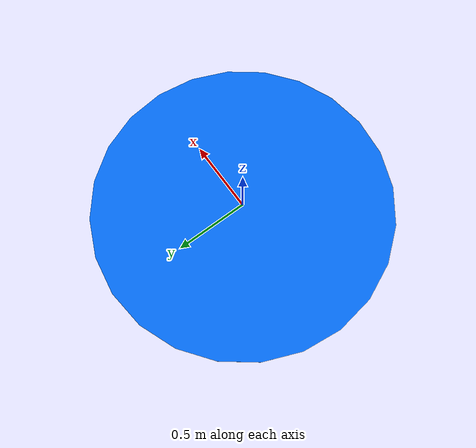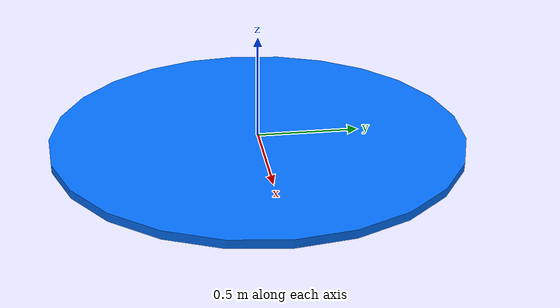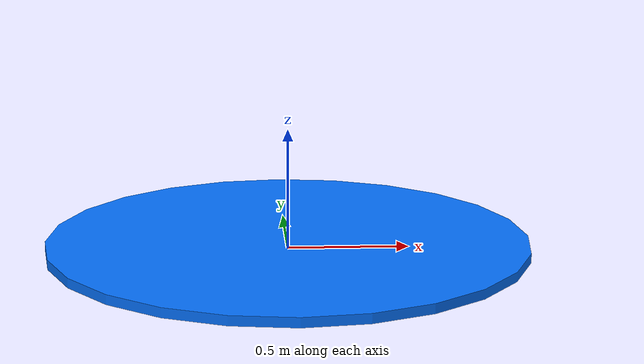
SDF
<?xml version="1.0"?>
<sdf version="1.9">
  <model name="kki_start_finish_marker">
    <static>true</static>
    <link name="base_link">
      <visual name="start_finish_visual">
        <pose>0 0 0.02 0 0 0</pose>
        <geometry>
          <cylinder>
            <radius>1.0</radius>
            <length>0.04</length>
          </cylinder>
        </geometry>
        <material>
          <ambient>0.02 0.45 1.0 1</ambient>
          <diffuse>0.02 0.45 1.0 1</diffuse>
          <specular>0.25 0.25 0.25 1</specular>
        </material>
      </visual>
      <collision name="collision">
        <!-- Thin marker collision keeps the start/finish object detectable
             without acting like a tall obstacle. -->
        <pose>0 0 0.02 0 0 0</pose>
        <geometry>
          <cylinder>
            <radius>1.0</radius>
            <length>0.04</length>
          </cylinder>
        </geometry>
      </collision>
      <sensor name="object_contact_sensor" type="contact">
        <!-- Start/finish contact is detectable without making the marker tall. -->
        <contact>
          <collision>collision</collision>
          <topic>/kki/collisions/objects</topic>
        </contact>
        <always_on>true</always_on>
        <update_rate>30</update_rate>
      </sensor>
    </link>
  </model>
</sdf>
